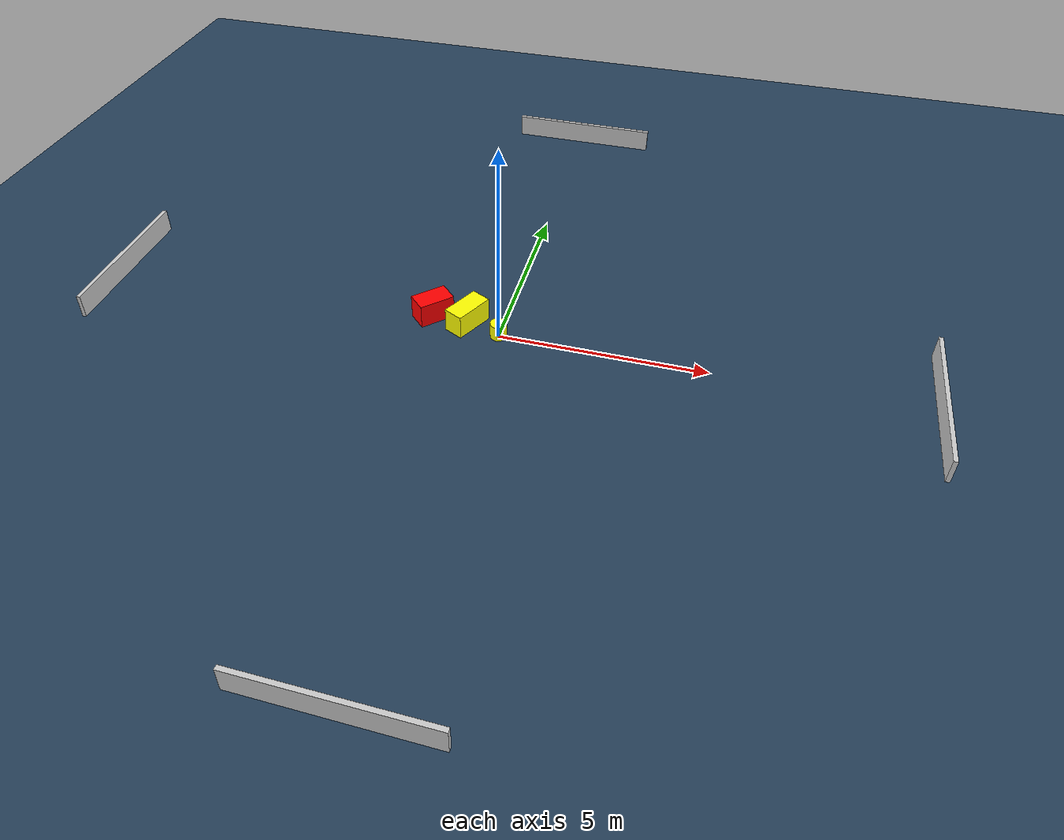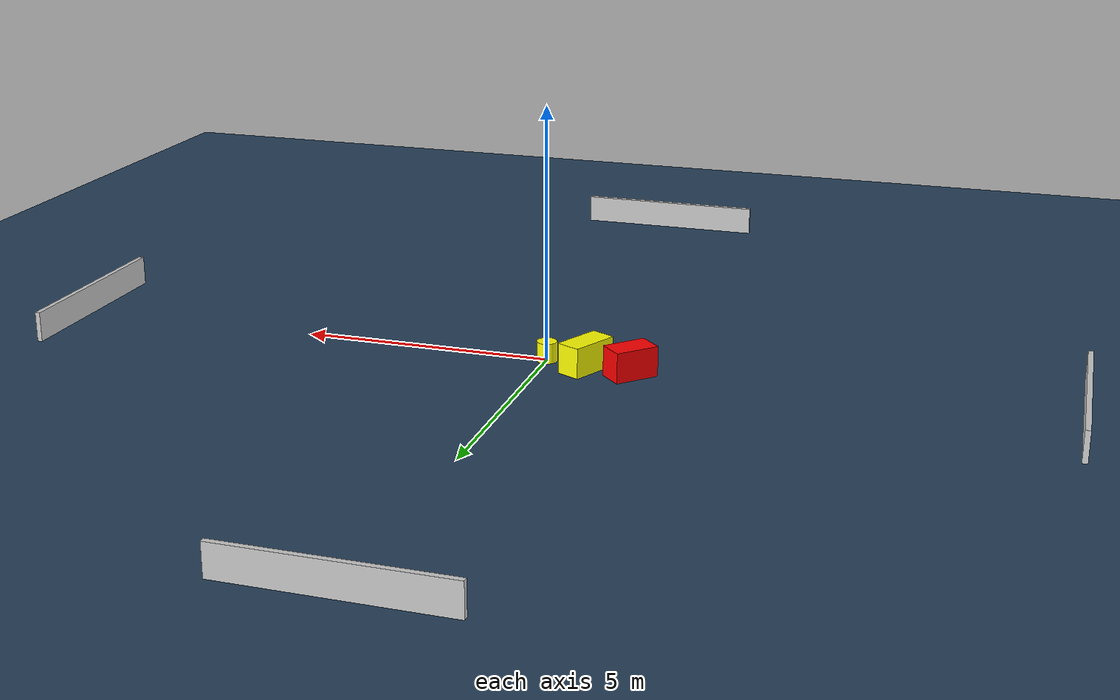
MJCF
<?xml version="1.0" ?>
<mujoco model="generated_environment">
  <option timestep="0.01" integrator="RK4" cone="elliptic"/>
  <default>
    <geom density="1"/>
  </default>
  <asset>
    <texture builtin="gradient" height="3072" name="skybox" rgb1="0.3 0.5 0.7" rgb2="0 0 0" type="skybox" width="512"/>
    <texture builtin="checker" height="300" name="groundplane" rgb1="0.2 0.3 0.4" rgb2="0.1 0.2 0.3" type="2d" width="300"/>
    <material name="groundplane" reflectance="0.2" texrepeat="5 5" texture="groundplane"/>
  </asset>
  <worldbody>
    <light dir="0 0 -1" directional="true" pos="0 0 1.5"/>
    <geom condim="3" friction="0.5 0.005 0.001" material="groundplane" name="floor" pos="0 0 0" size="0 0 0.05" type="plane"/>
    <body name="walls">
      <geom name="wall_1" condim="4" pos="-10.0 0.0 0.3" rgba="0.800000011920929 0.800000011920929 0.800000011920929 1.0" size="0.05 2.0 0.3" type="box"/>
      <geom name="wall_2" condim="4" pos="10.0 0.0 0.3" rgba="0.800000011920929 0.800000011920929 0.800000011920929 1.0" size="0.05 2.0 0.3" type="box"/>
      <geom name="wall_3" condim="4" pos="0.0 -10.0 0.3" rgba="0.800000011920929 0.800000011920929 0.800000011920929 1.0" size="2.0 0.05 0.3" type="box"/>
      <geom name="wall_4" condim="4" pos="0.0 10.0 0.3" rgba="0.800000011920929 0.800000011920929 0.800000011920929 1.0" size="2.0 0.05 0.3" type="box"/>
    </body>
    <body name="robot">
      <joint name="joint_x" type="slide" pos="0 0 0" axis="1 0 0"/>
      <joint name="joint_y" type="slide" pos="0 0 0" axis="0 1 0"/>
      <geom name="robot" type="cylinder" pos="0.0 0.0 0.2" size="0.2 0.2 0.0" mass="5.0" friction="1.0 0.005 0.0001" condim="4" rgba="1.0 1.0 0.0 1.0"/>
    </body>
    <body name="obstacle_1_movable">
      <geom name="obstacle_1_movable" condim="4" pos="-0.8467381113304568 0.2425008927165196 0.3" euler="0 0 333.39313112622034" friction="0.0 0.005 0.001" rgba="1.0 1.0 0.0 1.0" size="0.24791428100072 0.4992665816106599 0.3" type="box" mass="0.1"/>
      <joint type="free"/>
    </body>
    <body name="obstacle_2_static">
      <geom name="obstacle_2_static" condim="4" pos="-1.747356190188308 0.3173036059470706 0.3" euler="0 0 135.33710333145285" friction="0.0 0.005 0.001" rgba="1.0 0.0 0.0 1.0" size="0.2621049687639375 0.4437770566109761 0.3" type="box"/>
    </body>
  </worldbody>
  <actuator>
    <motor name="actuator_x" joint="joint_x" gear="1" ctrlrange="-1 1"/>
    <motor name="actuator_y" joint="joint_y" gear="1" ctrlrange="-1 1"/>
  </actuator>
</mujoco>
